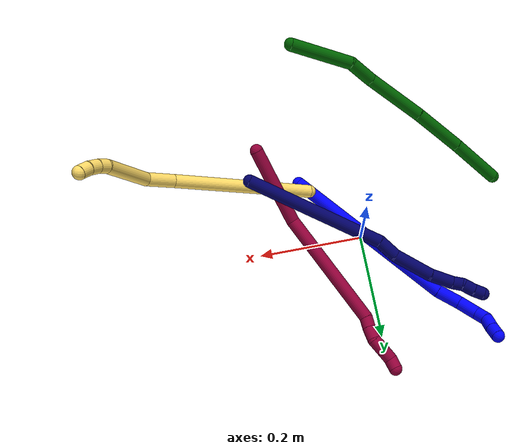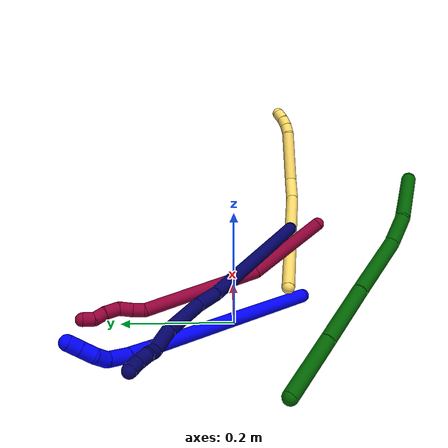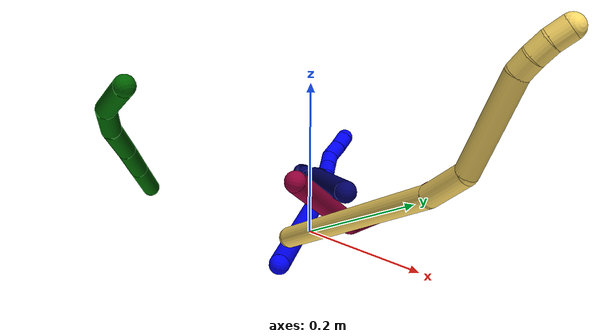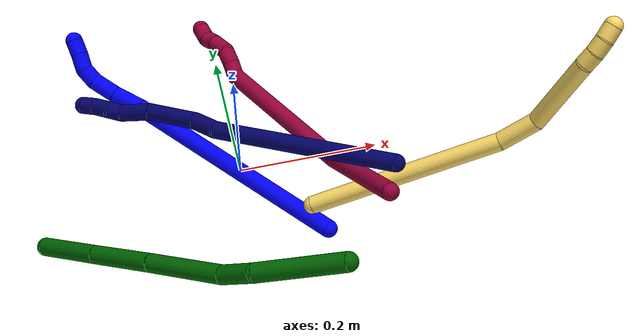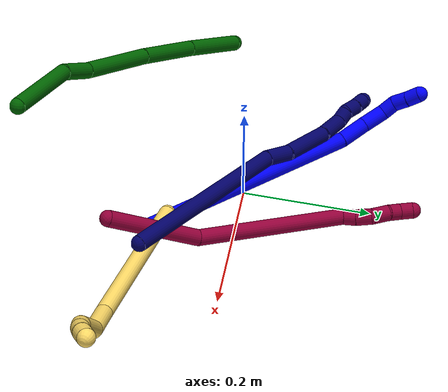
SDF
<sdf version="1.7">
 <world name="default">
  <model name="1">
   <static>0</static>
   <link name="1">
    <collision name="collision-cylinder-e_1_1_4">
     <pose>-0.109023 0.129871 -0.038908 -1.86187 -0.677269 0.883929</pose>
     <geometry><cylinder><radius>0.0125</radius><length>0.347944</length></cylinder></geometry>
     <surface>
      <friction><ode><mu>1.16</mu><mu2>1.16</mu2><slip1>0</slip1><slip2>0</slip2></ode></friction>
      <contact><ode><kp>1e+06</kp><kd>1</kd><max_vel>0</max_vel><min_depth>0.001</min_depth></ode></contact>
     </surface>
    </collision>
    <visual name="visual-cylinder-e_1_1_4">
     <pose>-0.109023 0.129871 -0.038908 -1.86187 -0.677269 0.883929</pose>
     <geometry><cylinder><radius>0.0125</radius><length>0.347944</length></cylinder></geometry>
     <material><ambient>0 0 1 1</ambient></material>
    </visual>
    <collision name="collision-cylinder-e_2_4_5">
     <pose>-0.231378 0.277703 -0.079168 -1.64597 -0.637245 0.683378</pose>
     <geometry><cylinder><radius>0.0125</radius><length>0.044818</length></cylinder></geometry>
     <surface>
      <friction><ode><mu>1.16</mu><mu2>1.16</mu2><slip1>0</slip1><slip2>0</slip2></ode></friction>
      <contact><ode><kp>1e+06</kp><kd>1</kd><max_vel>0</max_vel><min_depth>0.001</min_depth></ode></contact>
     </surface>
    </collision>
    <visual name="visual-cylinder-e_2_4_5">
     <pose>-0.231378 0.277703 -0.079168 -1.64597 -0.637245 0.683378</pose>
     <geometry><cylinder><radius>0.0125</radius><length>0.044818</length></cylinder></geometry>
     <material><ambient>0 0 1 1</ambient></material>
    </visual>
    <collision name="collision-cylinder-e_3_5_6">
     <pose>-0.254892 0.311886 -0.082665 -1.70216 -0.556522 0.630089</pose>
     <geometry><cylinder><radius>0.0125</radius><length>0.038546</length></cylinder></geometry>
     <surface>
      <friction><ode><mu>1.16</mu><mu2>1.16</mu2><slip1>0</slip1><slip2>0</slip2></ode></friction>
      <contact><ode><kp>1e+06</kp><kd>1</kd><max_vel>0</max_vel><min_depth>0.001</min_depth></ode></contact>
     </surface>
    </collision>
    <visual name="visual-cylinder-e_3_5_6">
     <pose>-0.254892 0.311886 -0.082665 -1.70216 -0.556522 0.630089</pose>
     <geometry><cylinder><radius>0.0125</radius><length>0.038546</length></cylinder></geometry>
     <material><ambient>0 0 1 1</ambient></material>
    </visual>
    <collision name="collision-cylinder-e_4_6_7">
     <pose>-0.266626 0.339495 -0.086035 -1.67813 -0.134834 0.150088</pose>
     <geometry><cylinder><radius>0.0125</radius><length>0.023112</length></cylinder></geometry>
     <surface>
      <friction><ode><mu>1.16</mu><mu2>1.16</mu2><slip1>0</slip1><slip2>0</slip2></ode></friction>
      <contact><ode><kp>1e+06</kp><kd>1</kd><max_vel>0</max_vel><min_depth>0.001</min_depth></ode></contact>
     </surface>
    </collision>
    <visual name="visual-cylinder-e_4_6_7">
     <pose>-0.266626 0.339495 -0.086035 -1.67813 -0.134834 0.150088</pose>
     <geometry><cylinder><radius>0.0125</radius><length>0.023112</length></cylinder></geometry>
     <material><ambient>0 0 1 1</ambient></material>
    </visual>
    <collision name="collision-cylinder-e_5_7_8">
     <pose>-0.26736 0.361372 -0.09286 -2.06099 0.068772 -0.11457</pose>
     <geometry><cylinder><radius>0.0125</radius><length>0.02384</length></cylinder></geometry>
     <surface>
      <friction><ode><mu>1.16</mu><mu2>1.16</mu2><slip1>0</slip1><slip2>0</slip2></ode></friction>
      <contact><ode><kp>1e+06</kp><kd>1</kd><max_vel>0</max_vel><min_depth>0.001</min_depth></ode></contact>
     </surface>
    </collision>
    <visual name="visual-cylinder-e_5_7_8">
     <pose>-0.26736 0.361372 -0.09286 -2.06099 0.068772 -0.11457</pose>
     <geometry><cylinder><radius>0.0125</radius><length>0.02384</length></cylinder></geometry>
     <material><ambient>0 0 1 1</ambient></material>
    </visual>
    <collision name="collision-cylinder-e_6_8_2">
     <pose>-0.265977 0.381813 -0.102801 -1.98228 0.051924 -0.079289</pose>
     <geometry><cylinder><radius>0.0125</radius><length>0.02174</length></cylinder></geometry>
     <surface>
      <friction><ode><mu>1.16</mu><mu2>1.16</mu2><slip1>0</slip1><slip2>0</slip2></ode></friction>
      <contact><ode><kp>1e+06</kp><kd>1</kd><max_vel>0</max_vel><min_depth>0.001</min_depth></ode></contact>
     </surface>
    </collision>
    <visual name="visual-cylinder-e_6_8_2">
     <pose>-0.265977 0.381813 -0.102801 -1.98228 0.051924 -0.079289</pose>
     <geometry><cylinder><radius>0.0125</radius><length>0.02174</length></cylinder></geometry>
     <material><ambient>0 0 1 1</ambient></material>
    </visual>
    <collision name="collision-sphere-2">
     <pose>-0.265413 0.391762 -0.107143 0 -0 0</pose>
     <geometry><sphere><radius>0.0125</radius></sphere></geometry>
     <surface>
      <friction><ode><mu>1.16</mu><mu2>1.16</mu2><slip1>0</slip1><slip2>0</slip2></ode></friction>
      <contact><ode><kp>1e+06</kp><kd>1</kd><max_vel>0</max_vel><min_depth>0.001</min_depth></ode></contact>
     </surface>
    </collision>
    <visual name="visual-sphere-2">
     <pose>-0.265413 0.391762 -0.107143 0 -0 0</pose>
     <geometry><sphere><radius>0.0125</radius></sphere></geometry>
     <material><ambient>0 0 1 1</ambient></material>
    </visual>
    <collision name="collision-sphere-4">
     <pose>-0.218045 0.259743 -0.077816 0 -0 0</pose>
     <geometry><sphere><radius>0.0125</radius></sphere></geometry>
     <surface>
      <friction><ode><mu>1.16</mu><mu2>1.16</mu2><slip1>0</slip1><slip2>0</slip2></ode></friction>
      <contact><ode><kp>1e+06</kp><kd>1</kd><max_vel>0</max_vel><min_depth>0.001</min_depth></ode></contact>
     </surface>
    </collision>
    <visual name="visual-sphere-4">
     <pose>-0.218045 0.259743 -0.077816 0 -0 0</pose>
     <geometry><sphere><radius>0.0125</radius></sphere></geometry>
     <material><ambient>0 0 1 1</ambient></material>
    </visual>
    <collision name="collision-sphere-1">
     <geometry><sphere><radius>0.0125</radius></sphere></geometry>
     <surface>
      <friction><ode><mu>1.16</mu><mu2>1.16</mu2><slip1>0</slip1><slip2>0</slip2></ode></friction>
      <contact><ode><kp>1e+06</kp><kd>1</kd><max_vel>0</max_vel><min_depth>0.001</min_depth></ode></contact>
     </surface>
    </collision>
    <visual name="visual-sphere-1">
     <geometry><sphere><radius>0.0125</radius></sphere></geometry>
     <material><ambient>0 0 1 1</ambient></material>
    </visual>
    <collision name="collision-sphere-8">
     <pose>-0.266541 0.371863 -0.098459 0 -0 0</pose>
     <geometry><sphere><radius>0.0125</radius></sphere></geometry>
     <surface>
      <friction><ode><mu>1.16</mu><mu2>1.16</mu2><slip1>0</slip1><slip2>0</slip2></ode></friction>
      <contact><ode><kp>1e+06</kp><kd>1</kd><max_vel>0</max_vel><min_depth>0.001</min_depth></ode></contact>
     </surface>
    </collision>
    <visual name="visual-sphere-8">
     <pose>-0.266541 0.371863 -0.098459 0 -0 0</pose>
     <geometry><sphere><radius>0.0125</radius></sphere></geometry>
     <material><ambient>0 0 1 1</ambient></material>
    </visual>
    <collision name="collision-sphere-5">
     <pose>-0.244711 0.295663 -0.080521 0 -0 0</pose>
     <geometry><sphere><radius>0.0125</radius></sphere></geometry>
     <surface>
      <friction><ode><mu>1.16</mu><mu2>1.16</mu2><slip1>0</slip1><slip2>0</slip2></ode></friction>
      <contact><ode><kp>1e+06</kp><kd>1</kd><max_vel>0</max_vel><min_depth>0.001</min_depth></ode></contact>
     </surface>
    </collision>
    <visual name="visual-sphere-5">
     <pose>-0.244711 0.295663 -0.080521 0 -0 0</pose>
     <geometry><sphere><radius>0.0125</radius></sphere></geometry>
     <material><ambient>0 0 1 1</ambient></material>
    </visual>
    <collision name="collision-sphere-6">
     <pose>-0.265072 0.32811 -0.084808 0 -0 0</pose>
     <geometry><sphere><radius>0.0125</radius></sphere></geometry>
     <surface>
      <friction><ode><mu>1.16</mu><mu2>1.16</mu2><slip1>0</slip1><slip2>0</slip2></ode></friction>
      <contact><ode><kp>1e+06</kp><kd>1</kd><max_vel>0</max_vel><min_depth>0.001</min_depth></ode></contact>
     </surface>
    </collision>
    <visual name="visual-sphere-6">
     <pose>-0.265072 0.32811 -0.084808 0 -0 0</pose>
     <geometry><sphere><radius>0.0125</radius></sphere></geometry>
     <material><ambient>0 0 1 1</ambient></material>
    </visual>
    <collision name="collision-sphere-7">
     <pose>-0.268179 0.35088 -0.087262 0 -0 0</pose>
     <geometry><sphere><radius>0.0125</radius></sphere></geometry>
     <surface>
      <friction><ode><mu>1.16</mu><mu2>1.16</mu2><slip1>0</slip1><slip2>0</slip2></ode></friction>
      <contact><ode><kp>1e+06</kp><kd>1</kd><max_vel>0</max_vel><min_depth>0.001</min_depth></ode></contact>
     </surface>
    </collision>
    <visual name="visual-sphere-7">
     <pose>-0.268179 0.35088 -0.087262 0 -0 0</pose>
     <geometry><sphere><radius>0.0125</radius></sphere></geometry>
     <material><ambient>0 0 1 1</ambient></material>
    </visual>
    <inertial>
     <pose>-0.152894 0.188836 -0.053419 0 -0 0</pose>
     <mass>0.5</mass>
     <inertia>
      <ixx>0.003868</ixx>
      <ixy>0</ixy>
      <ixz>0</ixz>
      <iyy>0.003159</iyy>
      <iyz>0</iyz>
      <izz>-0.00044</izz>
     </inertia>
    </inertial>
   </link>
   <pose>0.099062 -0.130935 0.011493 1.2571 -0.796751 -0.416354</pose>
  </model>
  <model name="5">
   <static>0</static>
   <link name="5">
    <collision name="collision-cylinder-e_1_1_4">
     <pose>0.009131 0.00697 0.136502 -0.051015 0.066709 -0.001703</pose>
     <geometry><cylinder><radius>0.0125</radius><length>0.273968</length></cylinder></geometry>
     <surface>
      <friction><ode><mu>1.16</mu><mu2>1.16</mu2><slip1>0</slip1><slip2>0</slip2></ode></friction>
      <contact><ode><kp>1e+06</kp><kd>1</kd><max_vel>0</max_vel><min_depth>0.001</min_depth></ode></contact>
     </surface>
    </collision>
    <visual name="visual-cylinder-e_1_1_4">
     <pose>0.009131 0.00697 0.136502 -0.051015 0.066709 -0.001703</pose>
     <geometry><cylinder><radius>0.0125</radius><length>0.273968</length></cylinder></geometry>
     <material><ambient>1 0.858824 0.4 1</ambient></material>
    </visual>
    <collision name="collision-cylinder-e_2_4_5">
     <pose>0.025263 0.017891 0.299598 -0.147494 0.254703 -0.01892</pose>
     <geometry><cylinder><radius>0.0125</radius><length>0.055566</length></cylinder></geometry>
     <surface>
      <friction><ode><mu>1.16</mu><mu2>1.16</mu2><slip1>0</slip1><slip2>0</slip2></ode></friction>
      <contact><ode><kp>1e+06</kp><kd>1</kd><max_vel>0</max_vel><min_depth>0.001</min_depth></ode></contact>
     </surface>
    </collision>
    <visual name="visual-cylinder-e_2_4_5">
     <pose>0.025263 0.017891 0.299598 -0.147494 0.254703 -0.01892</pose>
     <geometry><cylinder><radius>0.0125</radius><length>0.055566</length></cylinder></geometry>
     <material><ambient>1 0.858824 0.4 1</ambient></material>
    </visual>
    <collision name="collision-cylinder-e_3_5_6">
     <pose>0.06109 0.048049 0.365181 -0.591811 0.550381 -0.171731</pose>
     <geometry><cylinder><radius>0.0125</radius><length>0.110233</length></cylinder></geometry>
     <surface>
      <friction><ode><mu>1.16</mu><mu2>1.16</mu2><slip1>0</slip1><slip2>0</slip2></ode></friction>
      <contact><ode><kp>1e+06</kp><kd>1</kd><max_vel>0</max_vel><min_depth>0.001</min_depth></ode></contact>
     </surface>
    </collision>
    <visual name="visual-cylinder-e_3_5_6">
     <pose>0.06109 0.048049 0.365181 -0.591811 0.550381 -0.171731</pose>
     <geometry><cylinder><radius>0.0125</radius><length>0.110233</length></cylinder></geometry>
     <material><ambient>1 0.858824 0.4 1</ambient></material>
    </visual>
    <collision name="collision-cylinder-e_4_6_7">
     <pose>0.095313 0.076535 0.412373 -0.270973 0.564924 -0.079086</pose>
     <geometry><cylinder><radius>0.0125</radius><length>0.020161</length></cylinder></geometry>
     <surface>
      <friction><ode><mu>1.16</mu><mu2>1.16</mu2><slip1>0</slip1><slip2>0</slip2></ode></friction>
      <contact><ode><kp>1e+06</kp><kd>1</kd><max_vel>0</max_vel><min_depth>0.001</min_depth></ode></contact>
     </surface>
    </collision>
    <visual name="visual-cylinder-e_4_6_7">
     <pose>0.095313 0.076535 0.412373 -0.270973 0.564924 -0.079086</pose>
     <geometry><cylinder><radius>0.0125</radius><length>0.020161</length></cylinder></geometry>
     <material><ambient>1 0.858824 0.4 1</ambient></material>
    </visual>
    <collision name="collision-cylinder-e_5_7_8">
     <pose>0.107011 0.079831 0.428316 -0.130674 0.679184 -0.046222</pose>
     <geometry><cylinder><radius>0.0125</radius><length>0.020064</length></cylinder></geometry>
     <surface>
      <friction><ode><mu>1.16</mu><mu2>1.16</mu2><slip1>0</slip1><slip2>0</slip2></ode></friction>
      <contact><ode><kp>1e+06</kp><kd>1</kd><max_vel>0</max_vel><min_depth>0.001</min_depth></ode></contact>
     </surface>
    </collision>
    <visual name="visual-cylinder-e_5_7_8">
     <pose>0.107011 0.079831 0.428316 -0.130674 0.679184 -0.046222</pose>
     <geometry><cylinder><radius>0.0125</radius><length>0.020064</length></cylinder></geometry>
     <material><ambient>1 0.858824 0.4 1</ambient></material>
    </visual>
    <collision name="collision-cylinder-e_6_8_2">
     <pose>0.120082 0.080051 0.443377 0.108456 0.743249 0.042304</pose>
     <geometry><cylinder><radius>0.0125</radius><length>0.020007</length></cylinder></geometry>
     <surface>
      <friction><ode><mu>1.16</mu><mu2>1.16</mu2><slip1>0</slip1><slip2>0</slip2></ode></friction>
      <contact><ode><kp>1e+06</kp><kd>1</kd><max_vel>0</max_vel><min_depth>0.001</min_depth></ode></contact>
     </surface>
    </collision>
    <visual name="visual-cylinder-e_6_8_2">
     <pose>0.120082 0.080051 0.443377 0.108456 0.743249 0.042304</pose>
     <geometry><cylinder><radius>0.0125</radius><length>0.020007</length></cylinder></geometry>
     <material><ambient>1 0.858824 0.4 1</ambient></material>
    </visual>
    <collision name="collision-sphere-2">
     <pose>0.126851 0.079254 0.450699 0 -0 0</pose>
     <geometry><sphere><radius>0.0125</radius></sphere></geometry>
     <surface>
      <friction><ode><mu>1.16</mu><mu2>1.16</mu2><slip1>0</slip1><slip2>0</slip2></ode></friction>
      <contact><ode><kp>1e+06</kp><kd>1</kd><max_vel>0</max_vel><min_depth>0.001</min_depth></ode></contact>
     </surface>
    </collision>
    <visual name="visual-sphere-2">
     <pose>0.126851 0.079254 0.450699 0 -0 0</pose>
     <geometry><sphere><radius>0.0125</radius></sphere></geometry>
     <material><ambient>1 0.858824 0.4 1</ambient></material>
    </visual>
    <collision name="collision-sphere-4">
     <pose>0.018263 0.013939 0.273003 0 -0 0</pose>
     <geometry><sphere><radius>0.0125</radius></sphere></geometry>
     <surface>
      <friction><ode><mu>1.16</mu><mu2>1.16</mu2><slip1>0</slip1><slip2>0</slip2></ode></friction>
      <contact><ode><kp>1e+06</kp><kd>1</kd><max_vel>0</max_vel><min_depth>0.001</min_depth></ode></contact>
     </surface>
    </collision>
    <visual name="visual-sphere-4">
     <pose>0.018263 0.013939 0.273003 0 -0 0</pose>
     <geometry><sphere><radius>0.0125</radius></sphere></geometry>
     <material><ambient>1 0.858824 0.4 1</ambient></material>
    </visual>
    <collision name="collision-sphere-1">
     <geometry><sphere><radius>0.0125</radius></sphere></geometry>
     <surface>
      <friction><ode><mu>1.16</mu><mu2>1.16</mu2><slip1>0</slip1><slip2>0</slip2></ode></friction>
      <contact><ode><kp>1e+06</kp><kd>1</kd><max_vel>0</max_vel><min_depth>0.001</min_depth></ode></contact>
     </surface>
    </collision>
    <visual name="visual-sphere-1">
     <geometry><sphere><radius>0.0125</radius></sphere></geometry>
     <material><ambient>1 0.858824 0.4 1</ambient></material>
    </visual>
    <collision name="collision-sphere-8">
     <pose>0.113313 0.080848 0.436055 0 -0 0</pose>
     <geometry><sphere><radius>0.0125</radius></sphere></geometry>
     <surface>
      <friction><ode><mu>1.16</mu><mu2>1.16</mu2><slip1>0</slip1><slip2>0</slip2></ode></friction>
      <contact><ode><kp>1e+06</kp><kd>1</kd><max_vel>0</max_vel><min_depth>0.001</min_depth></ode></contact>
     </surface>
    </collision>
    <visual name="visual-sphere-8">
     <pose>0.113313 0.080848 0.436055 0 -0 0</pose>
     <geometry><sphere><radius>0.0125</radius></sphere></geometry>
     <material><ambient>1 0.858824 0.4 1</ambient></material>
    </visual>
    <collision name="collision-sphere-5">
     <pose>0.032263 0.021842 0.326193 0 -0 0</pose>
     <geometry><sphere><radius>0.0125</radius></sphere></geometry>
     <surface>
      <friction><ode><mu>1.16</mu><mu2>1.16</mu2><slip1>0</slip1><slip2>0</slip2></ode></friction>
      <contact><ode><kp>1e+06</kp><kd>1</kd><max_vel>0</max_vel><min_depth>0.001</min_depth></ode></contact>
     </surface>
    </collision>
    <visual name="visual-sphere-5">
     <pose>0.032263 0.021842 0.326193 0 -0 0</pose>
     <geometry><sphere><radius>0.0125</radius></sphere></geometry>
     <material><ambient>1 0.858824 0.4 1</ambient></material>
    </visual>
    <collision name="collision-sphere-6">
     <pose>0.089916 0.074256 0.404169 0 -0 0</pose>
     <geometry><sphere><radius>0.0125</radius></sphere></geometry>
     <surface>
      <friction><ode><mu>1.16</mu><mu2>1.16</mu2><slip1>0</slip1><slip2>0</slip2></ode></friction>
      <contact><ode><kp>1e+06</kp><kd>1</kd><max_vel>0</max_vel><min_depth>0.001</min_depth></ode></contact>
     </surface>
    </collision>
    <visual name="visual-sphere-6">
     <pose>0.089916 0.074256 0.404169 0 -0 0</pose>
     <geometry><sphere><radius>0.0125</radius></sphere></geometry>
     <material><ambient>1 0.858824 0.4 1</ambient></material>
    </visual>
    <collision name="collision-sphere-7">
     <pose>0.100709 0.078814 0.420576 0 -0 0</pose>
     <geometry><sphere><radius>0.0125</radius></sphere></geometry>
     <surface>
      <friction><ode><mu>1.16</mu><mu2>1.16</mu2><slip1>0</slip1><slip2>0</slip2></ode></friction>
      <contact><ode><kp>1e+06</kp><kd>1</kd><max_vel>0</max_vel><min_depth>0.001</min_depth></ode></contact>
     </surface>
    </collision>
    <visual name="visual-sphere-7">
     <pose>0.100709 0.078814 0.420576 0 -0 0</pose>
     <geometry><sphere><radius>0.0125</radius></sphere></geometry>
     <material><ambient>1 0.858824 0.4 1</ambient></material>
    </visual>
    <inertial>
     <pose>0.034221 0.025893 0.240156 0 -0 0</pose>
     <mass>0.5</mass>
     <inertia>
      <ixx>0.001827</ixx>
      <ixy>0</ixy>
      <ixz>0</ixz>
      <iyy>0.001829</iyy>
      <iyz>0</iyz>
      <izz>-0.000293</izz>
     </inertia>
    </inertial>
   </link>
   <pose>0.082826 -0.10235 0.034762 1.13291 -0.659956 1.71463</pose>
  </model>
  <model name="6">
   <static>0</static>
   <link name="6">
    <collision name="collision-cylinder-e_1_1_4">
     <pose>-0.058447 -0.009057 0.012157 0.640313 -1.31701 -0.502239</pose>
     <geometry><cylinder><radius>0.0125</radius><length>0.120762</length></cylinder></geometry>
     <surface>
      <friction><ode><mu>1.16</mu><mu2>1.16</mu2><slip1>0</slip1><slip2>0</slip2></ode></friction>
      <contact><ode><kp>1e+06</kp><kd>1</kd><max_vel>0</max_vel><min_depth>0.001</min_depth></ode></contact>
     </surface>
    </collision>
    <visual name="visual-cylinder-e_1_1_4">
     <pose>-0.058447 -0.009057 0.012157 0.640313 -1.31701 -0.502239</pose>
     <geometry><cylinder><radius>0.0125</radius><length>0.120762</length></cylinder></geometry>
     <material><ambient>0 0.392157 0.003922 1</ambient></material>
    </visual>
    <collision name="collision-cylinder-e_2_4_5">
     <pose>-0.143545 -0.017358 0.020674 -2.93662 -1.4322 2.9063</pose>
     <geometry><cylinder><radius>0.0125</radius><length>0.053817</length></cylinder></geometry>
     <surface>
      <friction><ode><mu>1.16</mu><mu2>1.16</mu2><slip1>0</slip1><slip2>0</slip2></ode></friction>
      <contact><ode><kp>1e+06</kp><kd>1</kd><max_vel>0</max_vel><min_depth>0.001</min_depth></ode></contact>
     </surface>
    </collision>
    <visual name="visual-cylinder-e_2_4_5">
     <pose>-0.143545 -0.017358 0.020674 -2.93662 -1.4322 2.9063</pose>
     <geometry><cylinder><radius>0.0125</radius><length>0.053817</length></cylinder></geometry>
     <material><ambient>0 0.392157 0.003922 1</ambient></material>
    </visual>
    <collision name="collision-cylinder-e_3_5_6">
     <pose>-0.228159 -0.008285 0.020332 -1.1933 -1.41768 1.05483</pose>
     <geometry><cylinder><radius>0.0125</radius><length>0.1173</length></cylinder></geometry>
     <surface>
      <friction><ode><mu>1.16</mu><mu2>1.16</mu2><slip1>0</slip1><slip2>0</slip2></ode></friction>
      <contact><ode><kp>1e+06</kp><kd>1</kd><max_vel>0</max_vel><min_depth>0.001</min_depth></ode></contact>
     </surface>
    </collision>
    <visual name="visual-cylinder-e_3_5_6">
     <pose>-0.228159 -0.008285 0.020332 -1.1933 -1.41768 1.05483</pose>
     <geometry><cylinder><radius>0.0125</radius><length>0.1173</length></cylinder></geometry>
     <material><ambient>0 0.392157 0.003922 1</ambient></material>
    </visual>
    <collision name="collision-cylinder-e_4_6_7">
     <pose>-0.336849 0.007437 0.023451 -1.59483 -1.42576 1.44958</pose>
     <geometry><cylinder><radius>0.0125</radius><length>0.102528</length></cylinder></geometry>
     <surface>
      <friction><ode><mu>1.16</mu><mu2>1.16</mu2><slip1>0</slip1><slip2>0</slip2></ode></friction>
      <contact><ode><kp>1e+06</kp><kd>1</kd><max_vel>0</max_vel><min_depth>0.001</min_depth></ode></contact>
     </surface>
    </collision>
    <visual name="visual-cylinder-e_4_6_7">
     <pose>-0.336849 0.007437 0.023451 -1.59483 -1.42576 1.44958</pose>
     <geometry><cylinder><radius>0.0125</radius><length>0.102528</length></cylinder></geometry>
     <material><ambient>0 0.392157 0.003922 1</ambient></material>
    </visual>
    <collision name="collision-cylinder-e_5_7_2">
     <pose>-0.439686 0.023076 0.021241 -1.81282 -1.4095 1.65312</pose>
     <geometry><cylinder><radius>0.0125</radius><length>0.105592</length></cylinder></geometry>
     <surface>
      <friction><ode><mu>1.16</mu><mu2>1.16</mu2><slip1>0</slip1><slip2>0</slip2></ode></friction>
      <contact><ode><kp>1e+06</kp><kd>1</kd><max_vel>0</max_vel><min_depth>0.001</min_depth></ode></contact>
     </surface>
    </collision>
    <visual name="visual-cylinder-e_5_7_2">
     <pose>-0.439686 0.023076 0.021241 -1.81282 -1.4095 1.65312</pose>
     <geometry><cylinder><radius>0.0125</radius><length>0.105592</length></cylinder></geometry>
     <material><ambient>0 0.392157 0.003922 1</ambient></material>
    </visual>
    <collision name="collision-sphere-2">
     <pose>-0.491796 0.031308 0.019208 0 -0 0</pose>
     <geometry><sphere><radius>0.0125</radius></sphere></geometry>
     <surface>
      <friction><ode><mu>1.16</mu><mu2>1.16</mu2><slip1>0</slip1><slip2>0</slip2></ode></friction>
      <contact><ode><kp>1e+06</kp><kd>1</kd><max_vel>0</max_vel><min_depth>0.001</min_depth></ode></contact>
     </surface>
    </collision>
    <visual name="visual-sphere-2">
     <pose>-0.491796 0.031308 0.019208 0 -0 0</pose>
     <geometry><sphere><radius>0.0125</radius></sphere></geometry>
     <material><ambient>0 0.392157 0.003922 1</ambient></material>
    </visual>
    <collision name="collision-sphere-7">
     <pose>-0.387575 0.014844 0.023273 0 -0 0</pose>
     <geometry><sphere><radius>0.0125</radius></sphere></geometry>
     <surface>
      <friction><ode><mu>1.16</mu><mu2>1.16</mu2><slip1>0</slip1><slip2>0</slip2></ode></friction>
      <contact><ode><kp>1e+06</kp><kd>1</kd><max_vel>0</max_vel><min_depth>0.001</min_depth></ode></contact>
     </surface>
    </collision>
    <visual name="visual-sphere-7">
     <pose>-0.387575 0.014844 0.023273 0 -0 0</pose>
     <geometry><sphere><radius>0.0125</radius></sphere></geometry>
     <material><ambient>0 0.392157 0.003922 1</ambient></material>
    </visual>
    <collision name="collision-sphere-6">
     <pose>-0.286123 3e-05 0.023629 0 -0 0</pose>
     <geometry><sphere><radius>0.0125</radius></sphere></geometry>
     <surface>
      <friction><ode><mu>1.16</mu><mu2>1.16</mu2><slip1>0</slip1><slip2>0</slip2></ode></friction>
      <contact><ode><kp>1e+06</kp><kd>1</kd><max_vel>0</max_vel><min_depth>0.001</min_depth></ode></contact>
     </surface>
    </collision>
    <visual name="visual-sphere-6">
     <pose>-0.286123 3e-05 0.023629 0 -0 0</pose>
     <geometry><sphere><radius>0.0125</radius></sphere></geometry>
     <material><ambient>0 0.392157 0.003922 1</ambient></material>
    </visual>
    <collision name="collision-sphere-5">
     <pose>-0.170195 -0.016601 0.017034 0 -0 0</pose>
     <geometry><sphere><radius>0.0125</radius></sphere></geometry>
     <surface>
      <friction><ode><mu>1.16</mu><mu2>1.16</mu2><slip1>0</slip1><slip2>0</slip2></ode></friction>
      <contact><ode><kp>1e+06</kp><kd>1</kd><max_vel>0</max_vel><min_depth>0.001</min_depth></ode></contact>
     </surface>
    </collision>
    <visual name="visual-sphere-5">
     <pose>-0.170195 -0.016601 0.017034 0 -0 0</pose>
     <geometry><sphere><radius>0.0125</radius></sphere></geometry>
     <material><ambient>0 0.392157 0.003922 1</ambient></material>
    </visual>
    <collision name="collision-sphere-1">
     <geometry><sphere><radius>0.0125</radius></sphere></geometry>
     <surface>
      <friction><ode><mu>1.16</mu><mu2>1.16</mu2><slip1>0</slip1><slip2>0</slip2></ode></friction>
      <contact><ode><kp>1e+06</kp><kd>1</kd><max_vel>0</max_vel><min_depth>0.001</min_depth></ode></contact>
     </surface>
    </collision>
    <visual name="visual-sphere-1">
     <geometry><sphere><radius>0.0125</radius></sphere></geometry>
     <material><ambient>0 0.392157 0.003922 1</ambient></material>
    </visual>
    <collision name="collision-sphere-4">
     <pose>-0.116894 -0.018114 0.024314 0 -0 0</pose>
     <geometry><sphere><radius>0.0125</radius></sphere></geometry>
     <surface>
      <friction><ode><mu>1.16</mu><mu2>1.16</mu2><slip1>0</slip1><slip2>0</slip2></ode></friction>
      <contact><ode><kp>1e+06</kp><kd>1</kd><max_vel>0</max_vel><min_depth>0.001</min_depth></ode></contact>
     </surface>
    </collision>
    <visual name="visual-sphere-4">
     <pose>-0.116894 -0.018114 0.024314 0 -0 0</pose>
     <geometry><sphere><radius>0.0125</radius></sphere></geometry>
     <material><ambient>0 0.392157 0.003922 1</ambient></material>
    </visual>
    <inertial>
     <pose>-0.245021 0.000399 0.019226 0 -0 0</pose>
     <mass>0.5</mass>
     <inertia>
      <ixx>3.4e-05</ixx>
      <ixy>0</ixy>
      <ixz>0</ixz>
      <iyy>0.000525</iyy>
      <iyz>0</iyz>
      <izz>0.000467</izz>
     </inertia>
    </inertial>
   </link>
   <pose>0.076482 -0.316232 0.24054 0.285372 -0.538994 -0.536325</pose>
  </model>
  <model name="7">
   <static>0</static>
   <link name="7">
    <collision name="collision-cylinder-e_1_1_4">
     <pose>0.008146 0.035194 0.130788 -0.262863 0.06007 -0.007943</pose>
     <geometry><cylinder><radius>0.0125</radius><length>0.271371</length></cylinder></geometry>
     <surface>
      <friction><ode><mu>1.16</mu><mu2>1.16</mu2><slip1>0</slip1><slip2>0</slip2></ode></friction>
      <contact><ode><kp>1e+06</kp><kd>1</kd><max_vel>0</max_vel><min_depth>0.001</min_depth></ode></contact>
     </surface>
    </collision>
    <visual name="visual-cylinder-e_1_1_4">
     <pose>0.008146 0.035194 0.130788 -0.262863 0.06007 -0.007943</pose>
     <geometry><cylinder><radius>0.0125</radius><length>0.271371</length></cylinder></geometry>
     <material><ambient>0.003922 0 0.403922 1</ambient></material>
    </visual>
    <collision name="collision-cylinder-e_2_4_5">
     <pose>0.019003 0.069798 0.281091 0.030194 0.137979 0.002087</pose>
     <geometry><cylinder><radius>0.0125</radius><length>0.039421</length></cylinder></geometry>
     <surface>
      <friction><ode><mu>1.16</mu><mu2>1.16</mu2><slip1>0</slip1><slip2>0</slip2></ode></friction>
      <contact><ode><kp>1e+06</kp><kd>1</kd><max_vel>0</max_vel><min_depth>0.001</min_depth></ode></contact>
     </surface>
    </collision>
    <visual name="visual-cylinder-e_2_4_5">
     <pose>0.019003 0.069798 0.281091 0.030194 0.137979 0.002087</pose>
     <geometry><cylinder><radius>0.0125</radius><length>0.039421</length></cylinder></geometry>
     <material><ambient>0.003922 0 0.403922 1</ambient></material>
    </visual>
    <collision name="collision-cylinder-e_3_5_6">
     <pose>0.025956 0.076989 0.338352 -0.203283 0.109646 -0.011194</pose>
     <geometry><cylinder><radius>0.0125</radius><length>0.077546</length></cylinder></geometry>
     <surface>
      <friction><ode><mu>1.16</mu><mu2>1.16</mu2><slip1>0</slip1><slip2>0</slip2></ode></friction>
      <contact><ode><kp>1e+06</kp><kd>1</kd><max_vel>0</max_vel><min_depth>0.001</min_depth></ode></contact>
     </surface>
    </collision>
    <visual name="visual-cylinder-e_3_5_6">
     <pose>0.025956 0.076989 0.338352 -0.203283 0.109646 -0.011194</pose>
     <geometry><cylinder><radius>0.0125</radius><length>0.077546</length></cylinder></geometry>
     <material><ambient>0.003922 0 0.403922 1</ambient></material>
    </visual>
    <collision name="collision-cylinder-e_4_6_7">
     <pose>0.035009 0.094022 0.397862 -0.401976 0.200664 -0.041015</pose>
     <geometry><cylinder><radius>0.0125</radius><length>0.048266</length></cylinder></geometry>
     <surface>
      <friction><ode><mu>1.16</mu><mu2>1.16</mu2><slip1>0</slip1><slip2>0</slip2></ode></friction>
      <contact><ode><kp>1e+06</kp><kd>1</kd><max_vel>0</max_vel><min_depth>0.001</min_depth></ode></contact>
     </surface>
    </collision>
    <visual name="visual-cylinder-e_4_6_7">
     <pose>0.035009 0.094022 0.397862 -0.401976 0.200664 -0.041015</pose>
     <geometry><cylinder><radius>0.0125</radius><length>0.048266</length></cylinder></geometry>
     <material><ambient>0.003922 0 0.403922 1</ambient></material>
    </visual>
    <collision name="collision-cylinder-e_5_7_8">
     <pose>0.036896 0.107479 0.428652 -0.435869 -0.285592 0.063657</pose>
     <geometry><cylinder><radius>0.0125</radius><length>0.020756</length></cylinder></geometry>
     <surface>
      <friction><ode><mu>1.16</mu><mu2>1.16</mu2><slip1>0</slip1><slip2>0</slip2></ode></friction>
      <contact><ode><kp>1e+06</kp><kd>1</kd><max_vel>0</max_vel><min_depth>0.001</min_depth></ode></contact>
     </surface>
    </collision>
    <visual name="visual-cylinder-e_5_7_8">
     <pose>0.036896 0.107479 0.428652 -0.435869 -0.285592 0.063657</pose>
     <geometry><cylinder><radius>0.0125</radius><length>0.020756</length></cylinder></geometry>
     <material><ambient>0.003922 0 0.403922 1</ambient></material>
    </visual>
    <collision name="collision-cylinder-e_6_8_9">
     <pose>0.034598 0.113939 0.448686 -0.202208 0.055683 -0.00565</pose>
     <geometry><cylinder><radius>0.0125</radius><length>0.022508</length></cylinder></geometry>
     <surface>
      <friction><ode><mu>1.16</mu><mu2>1.16</mu2><slip1>0</slip1><slip2>0</slip2></ode></friction>
      <contact><ode><kp>1e+06</kp><kd>1</kd><max_vel>0</max_vel><min_depth>0.001</min_depth></ode></contact>
     </surface>
    </collision>
    <visual name="visual-cylinder-e_6_8_9">
     <pose>0.034598 0.113939 0.448686 -0.202208 0.055683 -0.00565</pose>
     <geometry><cylinder><radius>0.0125</radius><length>0.022508</length></cylinder></geometry>
     <material><ambient>0.003922 0 0.403922 1</ambient></material>
    </visual>
    <collision name="collision-cylinder-e_7_9_2">
     <pose>0.036038 0.119547 0.469151 -0.340495 0.080925 -0.013919</pose>
     <geometry><cylinder><radius>0.0125</radius><length>0.020133</length></cylinder></geometry>
     <surface>
      <friction><ode><mu>1.16</mu><mu2>1.16</mu2><slip1>0</slip1><slip2>0</slip2></ode></friction>
      <contact><ode><kp>1e+06</kp><kd>1</kd><max_vel>0</max_vel><min_depth>0.001</min_depth></ode></contact>
     </surface>
    </collision>
    <visual name="visual-cylinder-e_7_9_2">
     <pose>0.036038 0.119547 0.469151 -0.340495 0.080925 -0.013919</pose>
     <geometry><cylinder><radius>0.0125</radius><length>0.020133</length></cylinder></geometry>
     <material><ambient>0.003922 0 0.403922 1</ambient></material>
    </visual>
    <collision name="collision-sphere-2">
     <pose>0.036852 0.122898 0.478609 0 -0 0</pose>
     <geometry><sphere><radius>0.0125</radius></sphere></geometry>
     <surface>
      <friction><ode><mu>1.16</mu><mu2>1.16</mu2><slip1>0</slip1><slip2>0</slip2></ode></friction>
      <contact><ode><kp>1e+06</kp><kd>1</kd><max_vel>0</max_vel><min_depth>0.001</min_depth></ode></contact>
     </surface>
    </collision>
    <visual name="visual-sphere-2">
     <pose>0.036852 0.122898 0.478609 0 -0 0</pose>
     <geometry><sphere><radius>0.0125</radius></sphere></geometry>
     <material><ambient>0.003922 0 0.403922 1</ambient></material>
    </visual>
    <collision name="collision-sphere-9">
     <pose>0.035225 0.116196 0.459694 0 -0 0</pose>
     <geometry><sphere><radius>0.0125</radius></sphere></geometry>
     <surface>
      <friction><ode><mu>1.16</mu><mu2>1.16</mu2><slip1>0</slip1><slip2>0</slip2></ode></friction>
      <contact><ode><kp>1e+06</kp><kd>1</kd><max_vel>0</max_vel><min_depth>0.001</min_depth></ode></contact>
     </surface>
    </collision>
    <visual name="visual-sphere-9">
     <pose>0.035225 0.116196 0.459694 0 -0 0</pose>
     <geometry><sphere><radius>0.0125</radius></sphere></geometry>
     <material><ambient>0.003922 0 0.403922 1</ambient></material>
    </visual>
    <collision name="collision-sphere-4">
     <pose>0.016292 0.070388 0.261577 0 -0 0</pose>
     <geometry><sphere><radius>0.0125</radius></sphere></geometry>
     <surface>
      <friction><ode><mu>1.16</mu><mu2>1.16</mu2><slip1>0</slip1><slip2>0</slip2></ode></friction>
      <contact><ode><kp>1e+06</kp><kd>1</kd><max_vel>0</max_vel><min_depth>0.001</min_depth></ode></contact>
     </surface>
    </collision>
    <visual name="visual-sphere-4">
     <pose>0.016292 0.070388 0.261577 0 -0 0</pose>
     <geometry><sphere><radius>0.0125</radius></sphere></geometry>
     <material><ambient>0.003922 0 0.403922 1</ambient></material>
    </visual>
    <collision name="collision-sphere-1">
     <geometry><sphere><radius>0.0125</radius></sphere></geometry>
     <surface>
      <friction><ode><mu>1.16</mu><mu2>1.16</mu2><slip1>0</slip1><slip2>0</slip2></ode></friction>
      <contact><ode><kp>1e+06</kp><kd>1</kd><max_vel>0</max_vel><min_depth>0.001</min_depth></ode></contact>
     </surface>
    </collision>
    <visual name="visual-sphere-1">
     <geometry><sphere><radius>0.0125</radius></sphere></geometry>
     <material><ambient>0.003922 0 0.403922 1</ambient></material>
    </visual>
    <collision name="collision-sphere-8">
     <pose>0.033972 0.111683 0.437679 0 -0 0</pose>
     <geometry><sphere><radius>0.0125</radius></sphere></geometry>
     <surface>
      <friction><ode><mu>1.16</mu><mu2>1.16</mu2><slip1>0</slip1><slip2>0</slip2></ode></friction>
      <contact><ode><kp>1e+06</kp><kd>1</kd><max_vel>0</max_vel><min_depth>0.001</min_depth></ode></contact>
     </surface>
    </collision>
    <visual name="visual-sphere-8">
     <pose>0.033972 0.111683 0.437679 0 -0 0</pose>
     <geometry><sphere><radius>0.0125</radius></sphere></geometry>
     <material><ambient>0.003922 0 0.403922 1</ambient></material>
    </visual>
    <collision name="collision-sphere-5">
     <pose>0.021714 0.069209 0.300605 0 -0 0</pose>
     <geometry><sphere><radius>0.0125</radius></sphere></geometry>
     <surface>
      <friction><ode><mu>1.16</mu><mu2>1.16</mu2><slip1>0</slip1><slip2>0</slip2></ode></friction>
      <contact><ode><kp>1e+06</kp><kd>1</kd><max_vel>0</max_vel><min_depth>0.001</min_depth></ode></contact>
     </surface>
    </collision>
    <visual name="visual-sphere-5">
     <pose>0.021714 0.069209 0.300605 0 -0 0</pose>
     <geometry><sphere><radius>0.0125</radius></sphere></geometry>
     <material><ambient>0.003922 0 0.403922 1</ambient></material>
    </visual>
    <collision name="collision-sphere-6">
     <pose>0.030199 0.08477 0.376098 0 -0 0</pose>
     <geometry><sphere><radius>0.0125</radius></sphere></geometry>
     <surface>
      <friction><ode><mu>1.16</mu><mu2>1.16</mu2><slip1>0</slip1><slip2>0</slip2></ode></friction>
      <contact><ode><kp>1e+06</kp><kd>1</kd><max_vel>0</max_vel><min_depth>0.001</min_depth></ode></contact>
     </surface>
    </collision>
    <visual name="visual-sphere-6">
     <pose>0.030199 0.08477 0.376098 0 -0 0</pose>
     <geometry><sphere><radius>0.0125</radius></sphere></geometry>
     <material><ambient>0.003922 0 0.403922 1</ambient></material>
    </visual>
    <collision name="collision-sphere-7">
     <pose>0.03982 0.103275 0.419626 0 -0 0</pose>
     <geometry><sphere><radius>0.0125</radius></sphere></geometry>
     <surface>
      <friction><ode><mu>1.16</mu><mu2>1.16</mu2><slip1>0</slip1><slip2>0</slip2></ode></friction>
      <contact><ode><kp>1e+06</kp><kd>1</kd><max_vel>0</max_vel><min_depth>0.001</min_depth></ode></contact>
     </surface>
    </collision>
    <visual name="visual-sphere-7">
     <pose>0.03982 0.103275 0.419626 0 -0 0</pose>
     <geometry><sphere><radius>0.0125</radius></sphere></geometry>
     <material><ambient>0.003922 0 0.403922 1</ambient></material>
    </visual>
    <inertial>
     <pose>0.017865 0.060025 0.24091 0 -0 0</pose>
     <mass>0.5</mass>
     <inertia>
      <ixx>0.001726</ixx>
      <ixy>0</ixy>
      <ixz>0</ixz>
      <iyy>0.001677</iyy>
      <iyz>0</iyz>
      <izz>-0.000519</izz>
     </inertia>
    </inertial>
   </link>
   <pose>0.194562 -0.115129 0.118507 -2.85416 1.43374 -0.560043</pose>
  </model>
  <model name="8">
   <static>0</static>
   <link name="8">
    <collision name="collision-cylinder-e_1_1_4">
     <pose>0.000399 0.06407 -0.043234 -2.1644 0.005167 -0.009721</pose>
     <geometry><cylinder><radius>0.0125</radius><length>0.154588</length></cylinder></geometry>
     <surface>
      <friction><ode><mu>1.16</mu><mu2>1.16</mu2><slip1>0</slip1><slip2>0</slip2></ode></friction>
      <contact><ode><kp>1e+06</kp><kd>1</kd><max_vel>0</max_vel><min_depth>0.001</min_depth></ode></contact>
     </surface>
    </collision>
    <visual name="visual-cylinder-e_1_1_4">
     <pose>0.000399 0.06407 -0.043234 -2.1644 0.005167 -0.009721</pose>
     <geometry><cylinder><radius>0.0125</radius><length>0.154588</length></cylinder></geometry>
     <material><ambient>0.584314 0 0.227451 1</ambient></material>
    </visual>
    <collision name="collision-cylinder-e_2_4_5">
     <pose>0.048842 0.21908 -0.139102 -2.09546 0.428856 -0.722208</pose>
     <geometry><cylinder><radius>0.0125</radius><length>0.23107</length></cylinder></geometry>
     <surface>
      <friction><ode><mu>1.16</mu><mu2>1.16</mu2><slip1>0</slip1><slip2>0</slip2></ode></friction>
      <contact><ode><kp>1e+06</kp><kd>1</kd><max_vel>0</max_vel><min_depth>0.001</min_depth></ode></contact>
     </surface>
    </collision>
    <visual name="visual-cylinder-e_2_4_5">
     <pose>0.048842 0.21908 -0.139102 -2.09546 0.428856 -0.722208</pose>
     <geometry><cylinder><radius>0.0125</radius><length>0.23107</length></cylinder></geometry>
     <material><ambient>0.584314 0 0.227451 1</ambient></material>
    </visual>
    <collision name="collision-cylinder-e_3_5_6">
     <pose>0.102472 0.314779 -0.199446 -2.58851 0.55247 -1.56963</pose>
     <geometry><cylinder><radius>0.0125</radius><length>0.021293</length></cylinder></geometry>
     <surface>
      <friction><ode><mu>1.16</mu><mu2>1.16</mu2><slip1>0</slip1><slip2>0</slip2></ode></friction>
      <contact><ode><kp>1e+06</kp><kd>1</kd><max_vel>0</max_vel><min_depth>0.001</min_depth></ode></contact>
     </surface>
    </collision>
    <visual name="visual-cylinder-e_3_5_6">
     <pose>0.102472 0.314779 -0.199446 -2.58851 0.55247 -1.56963</pose>
     <geometry><cylinder><radius>0.0125</radius><length>0.021293</length></cylinder></geometry>
     <material><ambient>0.584314 0 0.227451 1</ambient></material>
    </visual>
    <collision name="collision-cylinder-e_4_6_7">
     <pose>0.116241 0.325035 -0.214871 -2.52259 0.712539 -1.7219</pose>
     <geometry><cylinder><radius>0.0125</radius><length>0.02503</length></cylinder></geometry>
     <surface>
      <friction><ode><mu>1.16</mu><mu2>1.16</mu2><slip1>0</slip1><slip2>0</slip2></ode></friction>
      <contact><ode><kp>1e+06</kp><kd>1</kd><max_vel>0</max_vel><min_depth>0.001</min_depth></ode></contact>
     </surface>
    </collision>
    <visual name="visual-cylinder-e_4_6_7">
     <pose>0.116241 0.325035 -0.214871 -2.52259 0.712539 -1.7219</pose>
     <geometry><cylinder><radius>0.0125</radius><length>0.02503</length></cylinder></geometry>
     <material><ambient>0.584314 0 0.227451 1</ambient></material>
    </visual>
    <collision name="collision-cylinder-e_5_7_8">
     <pose>0.130381 0.341034 -0.227876 -2.03749 0.468864 -0.739793</pose>
     <geometry><cylinder><radius>0.0125</radius><length>0.02637</length></cylinder></geometry>
     <surface>
      <friction><ode><mu>1.16</mu><mu2>1.16</mu2><slip1>0</slip1><slip2>0</slip2></ode></friction>
      <contact><ode><kp>1e+06</kp><kd>1</kd><max_vel>0</max_vel><min_depth>0.001</min_depth></ode></contact>
     </surface>
    </collision>
    <visual name="visual-cylinder-e_5_7_8">
     <pose>0.130381 0.341034 -0.227876 -2.03749 0.468864 -0.739793</pose>
     <geometry><cylinder><radius>0.0125</radius><length>0.02637</length></cylinder></geometry>
     <material><ambient>0.584314 0 0.227451 1</ambient></material>
    </visual>
    <collision name="collision-cylinder-e_6_8_9">
     <pose>0.138854 0.360722 -0.237328 -1.99611 0.244512 -0.376566</pose>
     <geometry><cylinder><radius>0.0125</radius><length>0.020781</length></cylinder></geometry>
     <surface>
      <friction><ode><mu>1.16</mu><mu2>1.16</mu2><slip1>0</slip1><slip2>0</slip2></ode></friction>
      <contact><ode><kp>1e+06</kp><kd>1</kd><max_vel>0</max_vel><min_depth>0.001</min_depth></ode></contact>
     </surface>
    </collision>
    <visual name="visual-cylinder-e_6_8_9">
     <pose>0.138854 0.360722 -0.237328 -1.99611 0.244512 -0.376566</pose>
     <geometry><cylinder><radius>0.0125</radius><length>0.020781</length></cylinder></geometry>
     <material><ambient>0.584314 0 0.227451 1</ambient></material>
    </visual>
    <collision name="collision-cylinder-e_7_9_2">
     <pose>0.147547 0.375733 -0.247549 -2.37586 0.633669 -1.36659</pose>
     <geometry><cylinder><radius>0.0125</radius><length>0.020868</length></cylinder></geometry>
     <surface>
      <friction><ode><mu>1.16</mu><mu2>1.16</mu2><slip1>0</slip1><slip2>0</slip2></ode></friction>
      <contact><ode><kp>1e+06</kp><kd>1</kd><max_vel>0</max_vel><min_depth>0.001</min_depth></ode></contact>
     </surface>
    </collision>
    <visual name="visual-cylinder-e_7_9_2">
     <pose>0.147547 0.375733 -0.247549 -2.37586 0.633669 -1.36659</pose>
     <geometry><cylinder><radius>0.0125</radius><length>0.020868</length></cylinder></geometry>
     <material><ambient>0.584314 0 0.227451 1</ambient></material>
    </visual>
    <collision name="collision-sphere-2">
     <pose>0.153725 0.38156 -0.253611 0 -0 0</pose>
     <geometry><sphere><radius>0.0125</radius></sphere></geometry>
     <surface>
      <friction><ode><mu>1.16</mu><mu2>1.16</mu2><slip1>0</slip1><slip2>0</slip2></ode></friction>
      <contact><ode><kp>1e+06</kp><kd>1</kd><max_vel>0</max_vel><min_depth>0.001</min_depth></ode></contact>
     </surface>
    </collision>
    <visual name="visual-sphere-2">
     <pose>0.153725 0.38156 -0.253611 0 -0 0</pose>
     <geometry><sphere><radius>0.0125</radius></sphere></geometry>
     <material><ambient>0.584314 0 0.227451 1</ambient></material>
    </visual>
    <collision name="collision-sphere-9">
     <pose>0.141369 0.369905 -0.241488 0 -0 0</pose>
     <geometry><sphere><radius>0.0125</radius></sphere></geometry>
     <surface>
      <friction><ode><mu>1.16</mu><mu2>1.16</mu2><slip1>0</slip1><slip2>0</slip2></ode></friction>
      <contact><ode><kp>1e+06</kp><kd>1</kd><max_vel>0</max_vel><min_depth>0.001</min_depth></ode></contact>
     </surface>
    </collision>
    <visual name="visual-sphere-9">
     <pose>0.141369 0.369905 -0.241488 0 -0 0</pose>
     <geometry><sphere><radius>0.0125</radius></sphere></geometry>
     <material><ambient>0.584314 0 0.227451 1</ambient></material>
    </visual>
    <collision name="collision-sphere-4">
     <pose>0.000799 0.128141 -0.086469 0 -0 0</pose>
     <geometry><sphere><radius>0.0125</radius></sphere></geometry>
     <surface>
      <friction><ode><mu>1.16</mu><mu2>1.16</mu2><slip1>0</slip1><slip2>0</slip2></ode></friction>
      <contact><ode><kp>1e+06</kp><kd>1</kd><max_vel>0</max_vel><min_depth>0.001</min_depth></ode></contact>
     </surface>
    </collision>
    <visual name="visual-sphere-4">
     <pose>0.000799 0.128141 -0.086469 0 -0 0</pose>
     <geometry><sphere><radius>0.0125</radius></sphere></geometry>
     <material><ambient>0.584314 0 0.227451 1</ambient></material>
    </visual>
    <collision name="collision-sphere-1">
     <geometry><sphere><radius>0.0125</radius></sphere></geometry>
     <surface>
      <friction><ode><mu>1.16</mu><mu2>1.16</mu2><slip1>0</slip1><slip2>0</slip2></ode></friction>
      <contact><ode><kp>1e+06</kp><kd>1</kd><max_vel>0</max_vel><min_depth>0.001</min_depth></ode></contact>
     </surface>
    </collision>
    <visual name="visual-sphere-1">
     <geometry><sphere><radius>0.0125</radius></sphere></geometry>
     <material><ambient>0.584314 0 0.227451 1</ambient></material>
    </visual>
    <collision name="collision-sphere-8">
     <pose>0.136339 0.351539 -0.233169 0 -0 0</pose>
     <geometry><sphere><radius>0.0125</radius></sphere></geometry>
     <surface>
      <friction><ode><mu>1.16</mu><mu2>1.16</mu2><slip1>0</slip1><slip2>0</slip2></ode></friction>
      <contact><ode><kp>1e+06</kp><kd>1</kd><max_vel>0</max_vel><min_depth>0.001</min_depth></ode></contact>
     </surface>
    </collision>
    <visual name="visual-sphere-8">
     <pose>0.136339 0.351539 -0.233169 0 -0 0</pose>
     <geometry><sphere><radius>0.0125</radius></sphere></geometry>
     <material><ambient>0.584314 0 0.227451 1</ambient></material>
    </visual>
    <collision name="collision-sphere-5">
     <pose>0.096885 0.310019 -0.191735 0 -0 0</pose>
     <geometry><sphere><radius>0.0125</radius></sphere></geometry>
     <surface>
      <friction><ode><mu>1.16</mu><mu2>1.16</mu2><slip1>0</slip1><slip2>0</slip2></ode></friction>
      <contact><ode><kp>1e+06</kp><kd>1</kd><max_vel>0</max_vel><min_depth>0.001</min_depth></ode></contact>
     </surface>
    </collision>
    <visual name="visual-sphere-5">
     <pose>0.096885 0.310019 -0.191735 0 -0 0</pose>
     <geometry><sphere><radius>0.0125</radius></sphere></geometry>
     <material><ambient>0.584314 0 0.227451 1</ambient></material>
    </visual>
    <collision name="collision-sphere-6">
     <pose>0.108059 0.31954 -0.207158 0 -0 0</pose>
     <geometry><sphere><radius>0.0125</radius></sphere></geometry>
     <surface>
      <friction><ode><mu>1.16</mu><mu2>1.16</mu2><slip1>0</slip1><slip2>0</slip2></ode></friction>
      <contact><ode><kp>1e+06</kp><kd>1</kd><max_vel>0</max_vel><min_depth>0.001</min_depth></ode></contact>
     </surface>
    </collision>
    <visual name="visual-sphere-6">
     <pose>0.108059 0.31954 -0.207158 0 -0 0</pose>
     <geometry><sphere><radius>0.0125</radius></sphere></geometry>
     <material><ambient>0.584314 0 0.227451 1</ambient></material>
    </visual>
    <collision name="collision-sphere-7">
     <pose>0.124423 0.33053 -0.222584 0 -0 0</pose>
     <geometry><sphere><radius>0.0125</radius></sphere></geometry>
     <surface>
      <friction><ode><mu>1.16</mu><mu2>1.16</mu2><slip1>0</slip1><slip2>0</slip2></ode></friction>
      <contact><ode><kp>1e+06</kp><kd>1</kd><max_vel>0</max_vel><min_depth>0.001</min_depth></ode></contact>
     </surface>
    </collision>
    <visual name="visual-sphere-7">
     <pose>0.124423 0.33053 -0.222584 0 -0 0</pose>
     <geometry><sphere><radius>0.0125</radius></sphere></geometry>
     <material><ambient>0.584314 0 0.227451 1</ambient></material>
    </visual>
    <inertial>
     <pose>0.051683 0.199391 -0.129115 0 -0 0</pose>
     <mass>0.5</mass>
     <inertia>
      <ixx>0.000404</ixx>
      <ixy>0</ixy>
      <ixz>0</ixz>
      <iyy>-0.00092</iyy>
      <iyz>0</iyz>
      <izz>-0.00154</izz>
     </inertia>
    </inertial>
   </link>
   <pose>0.171524 -0.166712 0.133582 -1.18306 -0.987067 2.16436</pose>
  </model>
 </world>
</sdf>
